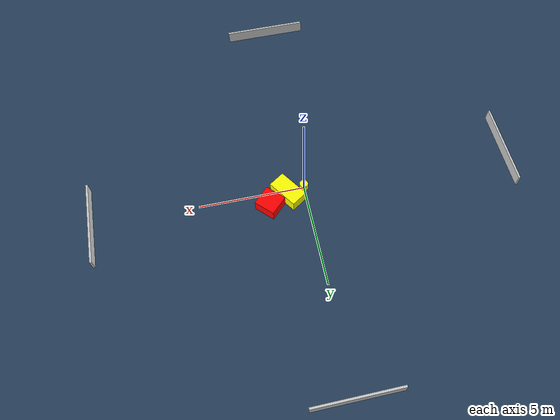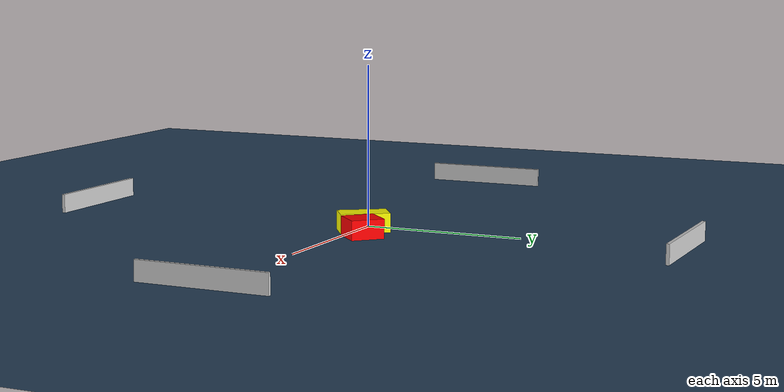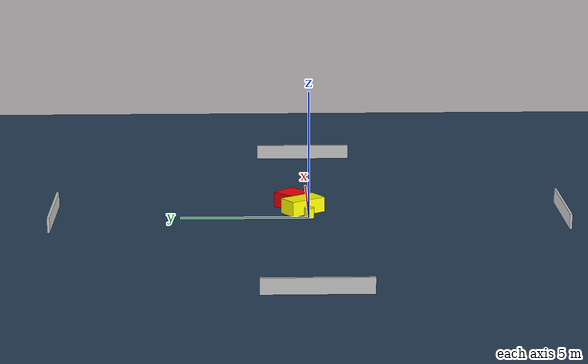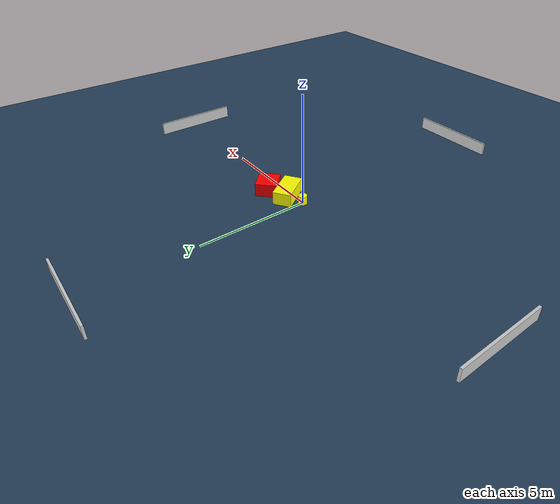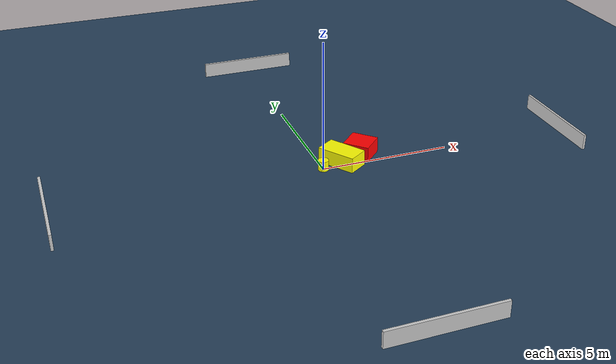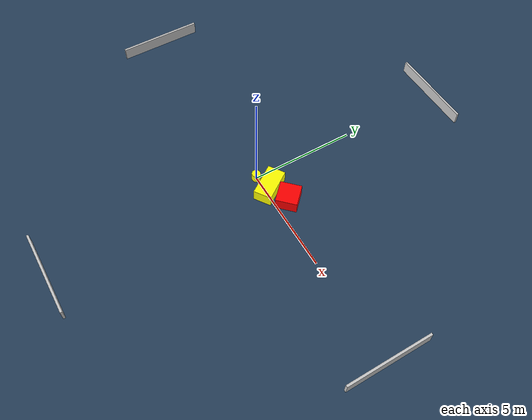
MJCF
<?xml version="1.0" ?>
<mujoco model="generated_environment">
  <option timestep="0.01" integrator="RK4" cone="elliptic"/>
  <default>
    <geom density="1"/>
  </default>
  <asset>
    <texture builtin="gradient" height="3072" name="skybox" rgb1="0.3 0.5 0.7" rgb2="0 0 0" type="skybox" width="512"/>
    <texture builtin="checker" height="300" name="groundplane" rgb1="0.2 0.3 0.4" rgb2="0.1 0.2 0.3" type="2d" width="300"/>
    <material name="groundplane" reflectance="0.2" texrepeat="5 5" texture="groundplane"/>
  </asset>
  <worldbody>
    <light dir="0 0 -1" directional="true" pos="0 0 1.5"/>
    <geom condim="3" friction="0.5 0.005 0.001" material="groundplane" name="floor" pos="0 0 0" size="0 0 0.05" type="plane"/>
    <body name="walls">
      <geom name="wall_1" condim="4" pos="-10.0 0.0 0.3" rgba="0.800000011920929 0.800000011920929 0.800000011920929 1.0" size="0.05 2.0 0.3" type="box"/>
      <geom name="wall_2" condim="4" pos="10.0 0.0 0.3" rgba="0.800000011920929 0.800000011920929 0.800000011920929 1.0" size="0.05 2.0 0.3" type="box"/>
      <geom name="wall_3" condim="4" pos="0.0 -10.0 0.3" rgba="0.800000011920929 0.800000011920929 0.800000011920929 1.0" size="2.0 0.05 0.3" type="box"/>
      <geom name="wall_4" condim="4" pos="0.0 10.0 0.3" rgba="0.800000011920929 0.800000011920929 0.800000011920929 1.0" size="2.0 0.05 0.3" type="box"/>
    </body>
    <body name="robot">
      <joint name="joint_x" type="slide" pos="0 0 0" axis="1 0 0"/>
      <joint name="joint_y" type="slide" pos="0 0 0" axis="0 1 0"/>
      <geom name="robot" type="cylinder" pos="0.0 0.0 0.2" size="0.2 0.2 0.0" mass="5.0" friction="1.0 0.005 0.0001" condim="4" rgba="1.0 1.0 0.0 1.0"/>
    </body>
    <body name="obstacle_1_movable">
      <geom name="obstacle_1_movable" condim="4" pos="0.8101300759904702 0.2213436579996476 0.3" euler="0 0 124.02609246459431" friction="0.0 0.005 0.001" rgba="1.0 1.0 0.0 1.0" size="0.7637879290019842 0.41452306814647144 0.3" type="box" mass="0.1"/>
      <joint type="free"/>
    </body>
    <body name="obstacle_2_static">
      <geom name="obstacle_2_static" condim="4" pos="1.743685804373624 0.6391143373704359 0.3" euler="0 0 224.99645039574915" friction="0.0 0.005 0.001" rgba="1.0 0.0 0.0 1.0" size="0.4905574841204576 0.5123300374160712 0.3" type="box"/>
    </body>
  </worldbody>
  <actuator>
    <motor name="actuator_x" joint="joint_x" gear="1" ctrlrange="-1 1"/>
    <motor name="actuator_y" joint="joint_y" gear="1" ctrlrange="-1 1"/>
  </actuator>
</mujoco>
